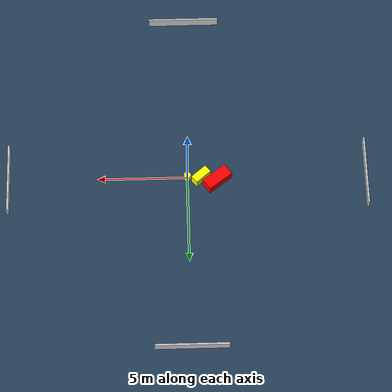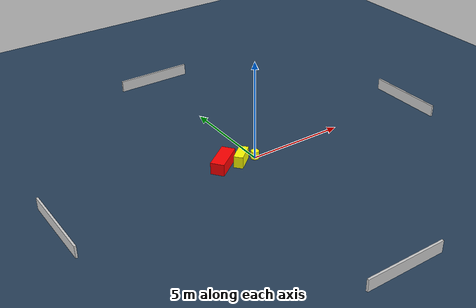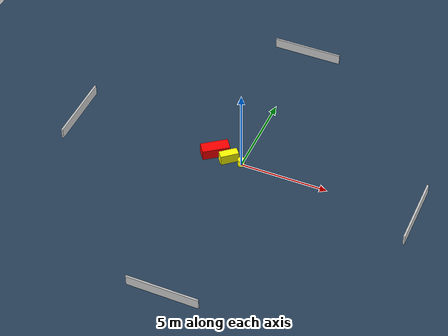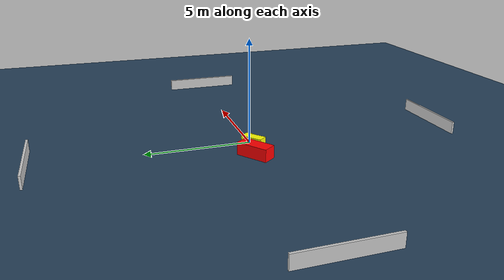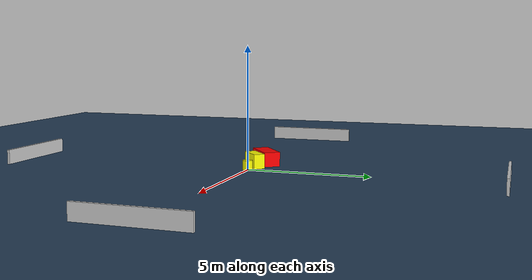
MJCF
<?xml version="1.0" ?>
<mujoco model="generated_environment">
  <option timestep="0.01" integrator="RK4" cone="elliptic"/>
  <default>
    <geom density="1"/>
  </default>
  <asset>
    <texture builtin="gradient" height="3072" name="skybox" rgb1="0.3 0.5 0.7" rgb2="0 0 0" type="skybox" width="512"/>
    <texture builtin="checker" height="300" name="groundplane" rgb1="0.2 0.3 0.4" rgb2="0.1 0.2 0.3" type="2d" width="300"/>
    <material name="groundplane" reflectance="0.2" texrepeat="5 5" texture="groundplane"/>
  </asset>
  <worldbody>
    <light dir="0 0 -1" directional="true" pos="0 0 1.5"/>
    <geom condim="3" friction="0.5 0.005 0.001" material="groundplane" name="floor" pos="0 0 0" size="0 0 0.05" type="plane"/>
    <body name="walls">
      <geom name="wall_1" condim="4" pos="-10.0 0.0 0.3" rgba="0.800000011920929 0.800000011920929 0.800000011920929 1.0" size="0.05 2.0 0.3" type="box"/>
      <geom name="wall_2" condim="4" pos="10.0 0.0 0.3" rgba="0.800000011920929 0.800000011920929 0.800000011920929 1.0" size="0.05 2.0 0.3" type="box"/>
      <geom name="wall_3" condim="4" pos="0.0 -10.0 0.3" rgba="0.800000011920929 0.800000011920929 0.800000011920929 1.0" size="2.0 0.05 0.3" type="box"/>
      <geom name="wall_4" condim="4" pos="0.0 10.0 0.3" rgba="0.800000011920929 0.800000011920929 0.800000011920929 1.0" size="2.0 0.05 0.3" type="box"/>
    </body>
    <body name="robot">
      <joint name="joint_x" type="slide" pos="0 0 0" axis="1 0 0"/>
      <joint name="joint_y" type="slide" pos="0 0 0" axis="0 1 0"/>
      <geom name="robot" type="cylinder" pos="0.0 0.0 0.2" size="0.2 0.2 0.0" mass="5.0" friction="1.0 0.005 0.0001" condim="4" rgba="1.0 1.0 0.0 1.0"/>
    </body>
    <body name="obstacle_1_movable">
      <geom name="obstacle_1_movable" condim="4" pos="-0.7647330401375914 0.04441139597939312 0.3" euler="0 0 310.29308519262156" friction="0.0 0.005 0.001" rgba="1.0 1.0 0.0 1.0" size="0.22879078389486632 0.5177373711122597 0.3" type="box" mass="0.1"/>
      <joint type="free"/>
    </body>
    <body name="obstacle_2_static">
      <geom name="obstacle_2_static" condim="4" pos="-1.6642567979858631 0.24001497357551005 0.3" euler="0 0 36.68978857796576" friction="0.0 0.005 0.001" rgba="1.0 0.0 0.0 1.0" size="0.7777789762865304 0.336151061668014 0.3" type="box"/>
    </body>
  </worldbody>
  <actuator>
    <motor name="actuator_x" joint="joint_x" gear="1" ctrlrange="-1 1"/>
    <motor name="actuator_y" joint="joint_y" gear="1" ctrlrange="-1 1"/>
  </actuator>
</mujoco>
